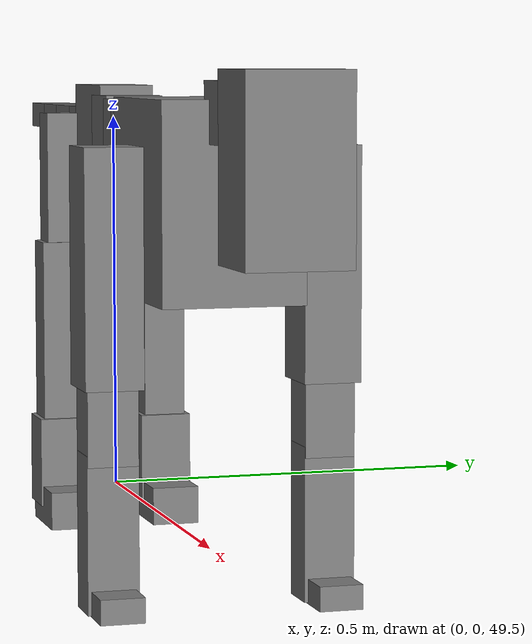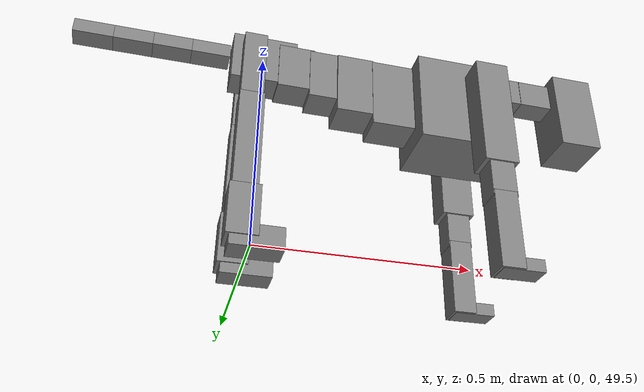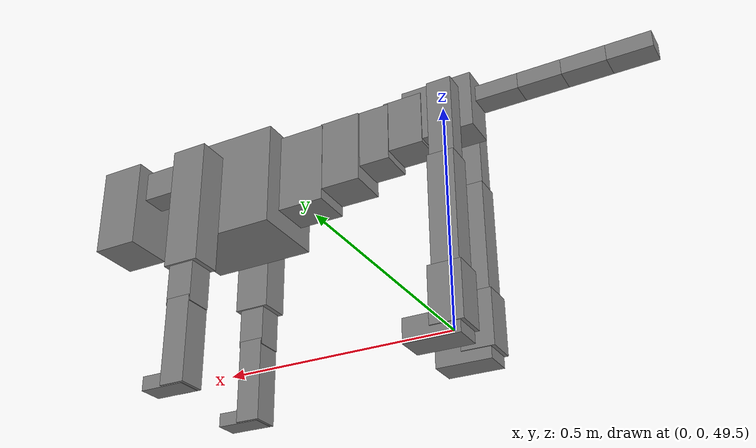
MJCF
<mujoco model="dog">

    <default>
        <joint armature="0.02" stiffness="1" damping="0.2" limited="true"/>
        <geom condim="3" friction="1 0.05 0.05" margin="0.01"/>
        <motor ctrllimited="true" ctrlrange="-1.0 1.0" forcelimited="true" gear="50"/>
    </default>

    <compiler inertiafromgeom="true" angle="radian"/>

    <option timestep="0.016" iterations="50" tolerance="1e-10" solver="Newton" jacobian="dense" cone="pyramidal"/>

    <size nconmax="20000" njmax="60000" nstack="5000000"/>
    <visual>
        <map force="0.1" zfar="30"/>
        <rgba haze="0.15 0.25 0.35 1"/>
        <quality shadowsize="2048"/>
        <global offwidth="800" offheight="800"/>
    </visual>

    <asset>
        <texture type="skybox" builtin="gradient" rgb1="0.3 0.5 0.7" rgb2="0 0 0" width="512" height="512"/>
        <texture name="texplane" type="2d" builtin="checker" rgb1=".2 .3 .4" rgb2=".1 0.15 0.2" width="512" height="512"
                 mark="cross" markrgb=".8 .8 .8"/>
        <texture name="texgeom" type="cube" builtin="flat" mark="cross" width="127" height="1278" rgb1="0.8 0.6 0.4"
                 rgb2="0.8 0.6 0.4" markrgb="1 1 1" random="0.01"/>

        <material name="matplane" reflectance="0.3" texture="texplane" texrepeat="1 1" texuniform="true"/>
        <material name="matgeom" texture="texgeom" texuniform="true" rgba="0.8 0.6 .4 1"/>
    </asset>

    <worldbody>
        <geom name="floor" pos="0 0 0" size="0 0 .25" type="plane" material="matplane" condim="3"/>

        <light directional="false" diffuse=".2 .2 .2" specular="0 0 0" pos="0 0 5" dir="0 0 -1" castshadow="false"/>
        <light mode="targetbodycom" target="torso" directional="false" diffuse=".8 .8 .8" specular="0.3 0.3 0.3"
               pos="0 0 4.0" dir="0 0 -1"/>

        <body name="root" pos="0 0 50">
            <freejoint name="root_1"/>
            <geom type="box" pos="0 0 -0.02" size="0.0774  0.0358  0.063" density="2030"/>

            <body name="spine1" pos="0.054 0 0">
                <joint name="spine1_y" axis="0 1 0" range="0 0.7" limited="true"/>
                <geom type="box" pos="0.02375 0 -0.03" size="0.04375  0.0375  0.05985" density="2030"/>

                <body name="spine2" pos="0.0612 0 0">
                    <joint name="spine2_y" axis="0 1 0" range="-0.15 0.15" limited="true"/>
                    <geom type="box" pos="0.03555  0  -0.04" size="0.04055  0.039  0.06615" density="2030"/>

                    <body name="spine3" pos="0.0730 0 0">
                        <joint name="spine3_y" axis="0 1 0" range="-0.15 0.15" limited="true"/>
                        <geom type="box" pos="0.03555  0  -0.057" size="0.04555  0.0445  0.081" density="2030"/>

                        <body name="spine4" pos="0.0780 0 0">
                            <joint name="spine4_y" axis="0 1 0" range="-0.15 0.15" limited="true"/>
                            <geom type="box" pos="0.05265  0  -0.07" size="0.05265  0.045  0.09135" density="2030"/>

                            <body name="torso" pos="0.1082 0 0">
                                <joint name="torso_y" axis="0 1 0" range="-0.15 0.15" limited="true"/>
                                <geom type="box" pos="0.11925  0  -0.085" size="0.11925  0.085  0.11745"
                                      density="2030"/>

                                <body name="neck1" pos="0.2160  0   0.0180">
                                    <joint name="neck1_y" axis="0 1 0" range="-1.2  -1" limited="true"/>
                                    <geom type="box" pos="0.0423  0  0" size="0.0423  0.03  0.036" density="2325"/>

                                    <body name="neck2" pos="0.0853  0  0">
                                        <joint name="neck2_y" axis="0 1 0" range="0.1  0" limited="true"/>
                                        <geom type="box" pos="0.0423  0  0" size="0.0423  0.03  0.036" density="2325"/>

                                        <body name="head" pos="0.0853  0  0">
                                            <joint name="head_y" axis="0 1 0" range="-0.3  -0.2" limited="true"/>
                                            <geom type="box" pos="0.0531  0  -0.055" size="0.0531  0.06  0.1044"
                                                  density="4030"/>

                                        </body>
                                    </body>
                                </body>

                                <body name="front_shoulder" pos="0.156  0   -0.0480">
                                    <joint name="front_shoulder_y" axis="0 1 0" range="-1 1.5" limited="true"/>
                                    <geom type="box" pos="0 0.13 -0.1120" size="0.0402  0.0344  0.1387" density="1158"/>
                                    <geom type="box" pos="0 -0.13 -0.1120" size="0.0402  0.0344  0.1387"
                                          density="1158"/>

                                    <body name="front_elbow" pos="0  0  -0.2240">
                                        <joint name="front_elbow_y" axis="0 1 0" range="-2 0" limited="true"/>
                                        <geom type="box" pos="0 0.13 -0.0577" size="0.0293  0.0299  0.0577"
                                              density="1081"/>
                                        <geom type="box" pos="0 -0.13 -0.0577" size="0.0293  0.0299  0.0577"
                                              density="1081"/>

                                        <body name="front_wrist" pos="0  0  -0.1154">
                                            <joint name="front_wrist_y" axis="0 1 0" range="-0.2 0" limited="true"/>
                                            <geom type="box" pos="0 0.13 -0.0793" size="0.0274  0.0304  0.0925"
                                                  density="1664"/>
                                            <geom type="box" pos="0 -0.13 -0.0793" size="0.0274  0.0304  0.0925"
                                                  density="1664"/>

                                            <body name="front_finger_end" pos="0  0  -0.1587">
                                                <joint name="front_finger_y" axis="0 1 0" range="-0.4 1"
                                                       limited="true"/>
                                                <geom type="box" pos="0.0263  0.13  0.0002"
                                                      size="0.0481  0.0263  0.0148" density="1515"/>
                                                <geom type="box" pos="0.0263  -0.13  0.0002"
                                                      size="0.0481  0.0263  0.0148" density="1515"/>

                                            </body>

                                        </body>
                                    </body>
                                </body>

                            </body>
                        </body>
                    </body>
                </body>
            </body>

            <body name="back_hip" pos="-0.03 0 -0.018">
                <joint name="back_hip_y" axis="0 1 0" range="-1.5 0.3" limited="true"/>
                <geom type="box" pos="0 0.07 -0.0835" size="0.0262  0.0206  0.1063" density="1154"/>
                <geom type="box" pos="0 -0.07 -0.0835" size="0.0262  0.0206  0.1063" density="1154"/>

                <body name="back_knee" pos="0  0  -0.1670">
                    <joint name="back_knee_y" axis="0 1 0" range="0 2.8" limited="true"/>
                    <geom type="box" pos="0 0.07 -0.1178" size="0.0282  0.0278  0.1334" density="1227"/>
                    <geom type="box" pos="0 -0.07 -0.1178" size="0.0282  0.0278  0.1334" density="1227"/>

                    <body name="back_ankle" pos="0  0  -0.2356">
                        <joint name="back_ankle_y" axis="0 1 0" range="-2.2 0" limited="true"/>
                        <geom type="box" pos="0 0.07 -0.0480" size="0.0341  0.0341  0.0593" density="1284"/>
                        <geom type="box" pos="0 -0.07 -0.0480" size="0.0341  0.0341  0.0593" density="1284"/>

                        <body name="back_toe_end" pos="0  0  -0.0960">
                            <joint name="back_toe_y" axis="0 1 0" range="-0.4 1" limited="true"/>
                            <geom type="box" pos="0.0313  0.07  -0.0101" size="0.0574  0.0313  0.0251" density="1515"/>
                            <geom type="box" pos="0.0313  -0.07  -0.0101" size="0.0574  0.0313  0.0251" density="1515"/>

                        </body>
                    </body>
                </body>
            </body>

            <body name="tail1" pos="-0.074 0 -0.006">
                <joint name="tail1_y" axis="0 1 0" range="-0.2 0.2" limited="true"/>
                <geom type="box" pos="-0.0536  0  0" size="0.045  0.025  0.0175" density="1587"/>

                <body name="tail2" pos="-0.09 0 0">
                    <joint name="tail2_y" axis="0 1 0" range="-0.2 0.2" limited="true"/>
                    <geom type="box" pos="-0.0536  0  0" size="0.045  0.025  0.0175" density="1587"/>

                    <body name="tail3" pos="-0.09 0 0">
                        <joint name="tail3_y" axis="0 1 0" range="-0.2 0.2" limited="true"/>
                        <geom type="box" pos="-0.0536  0  0" size="0.045  0.025  0.0175" density="1587"/>

                        <body name="tail4" pos="-0.09 0 0">
                            <joint name="tail4_y" axis="0 1 0" range="-0.2 0.2" limited="true"/>
                            <geom type="box" pos="-0.0536  0  0" size="0.045  0.025  0.0175" density="1587"/>

                        </body>
                    </body>
                </body>
            </body>
        </body>
    </worldbody>

    <actuator>
        <motor joint="spine1_y" forcerange="-150 150     "/>
        <motor joint="spine2_y" forcerange="-150 150     "/>
        <motor joint="spine3_y" forcerange="-150 150     "/>
        <motor joint="spine4_y" forcerange="-150 150     "/>
        <motor joint="torso_y" forcerange="-150 150     "/>
        <motor joint="neck1_y" forcerange="-100 100       "/>
        <motor joint="neck2_y" forcerange="-100 100       "/>
        <motor joint="head_y" forcerange="-150 150       "/>
        <motor joint="front_shoulder_y" forcerange="-132.74 196.54"/>
        <motor joint="front_elbow_y" forcerange="-144.71 173.09"/>
        <motor joint="front_wrist_y" forcerange="-107.38 135.80"/>
        <motor joint="front_finger_y" forcerange="-39.36 60.65"/>
        <motor joint="back_hip_y" forcerange="-235.66 238.37"/>
        <motor joint="back_knee_y" forcerange="-273.58 330.77"/>
        <motor joint="back_angle_y" forcerange="-208.34 237.01"/>
        <motor joint="back_toe_y" forcerange="-111.47 58.97"/>
        <motor joint="tail1_y" forcerange="-50 50     "/>
        <motor joint="tail2_y" forcerange="-50 50     "/>
        <motor joint="tail3_y" forcerange="-50 50     "/>
        <motor joint="tail4_y" forcerange="-50 50     "/>
    </actuator>
</mujoco>
